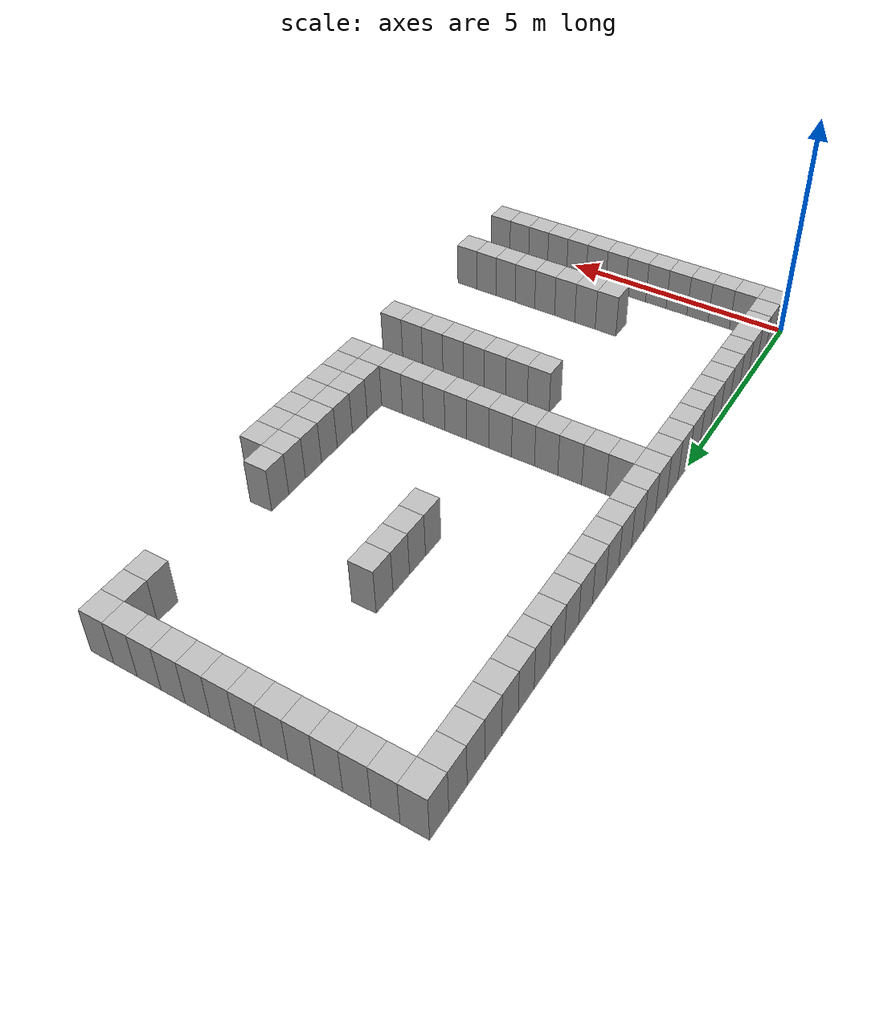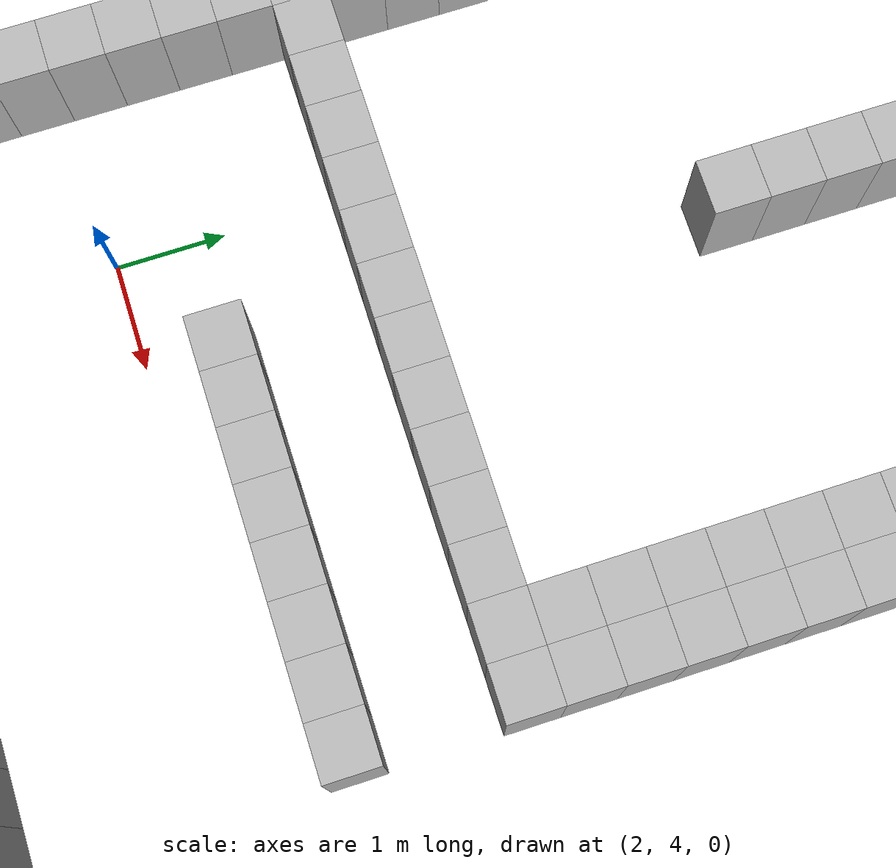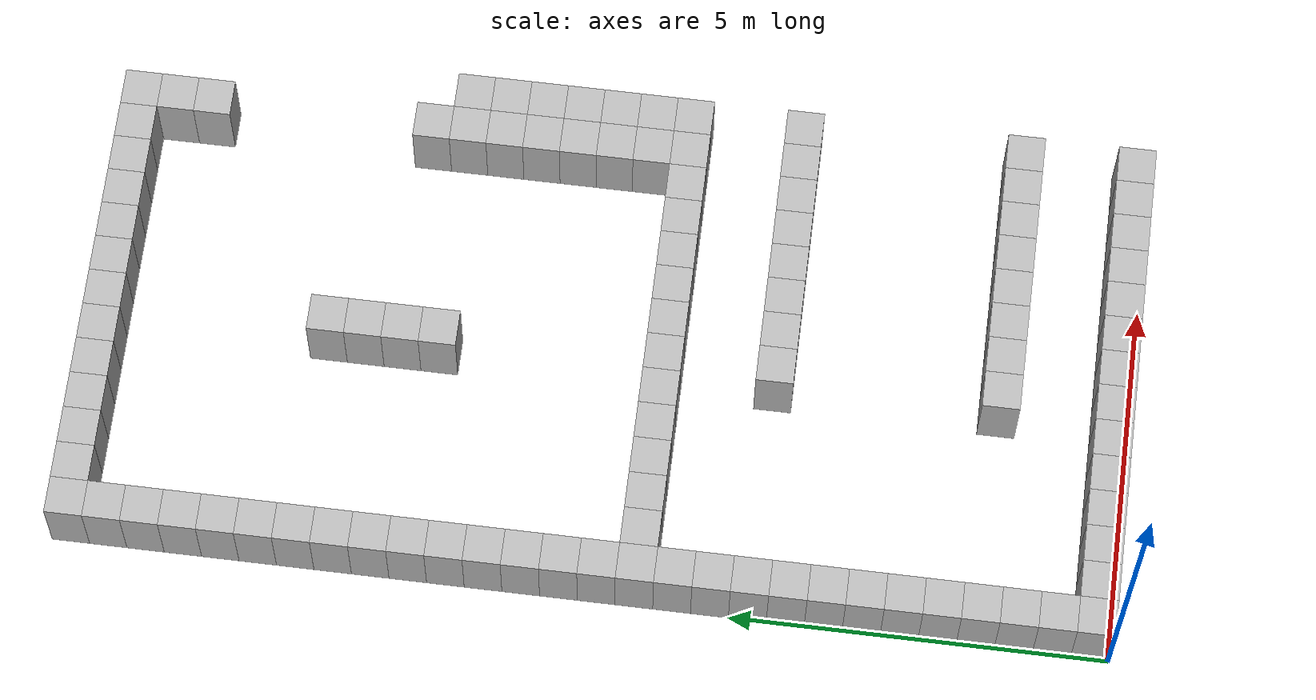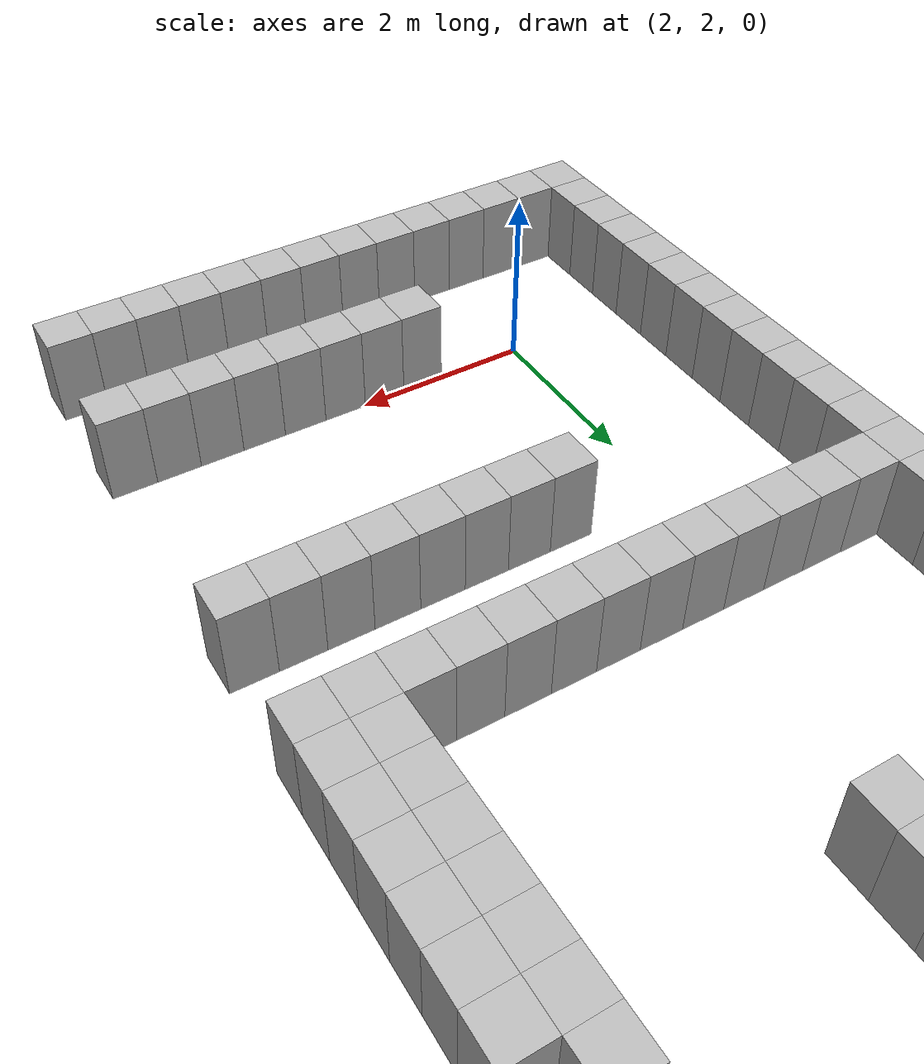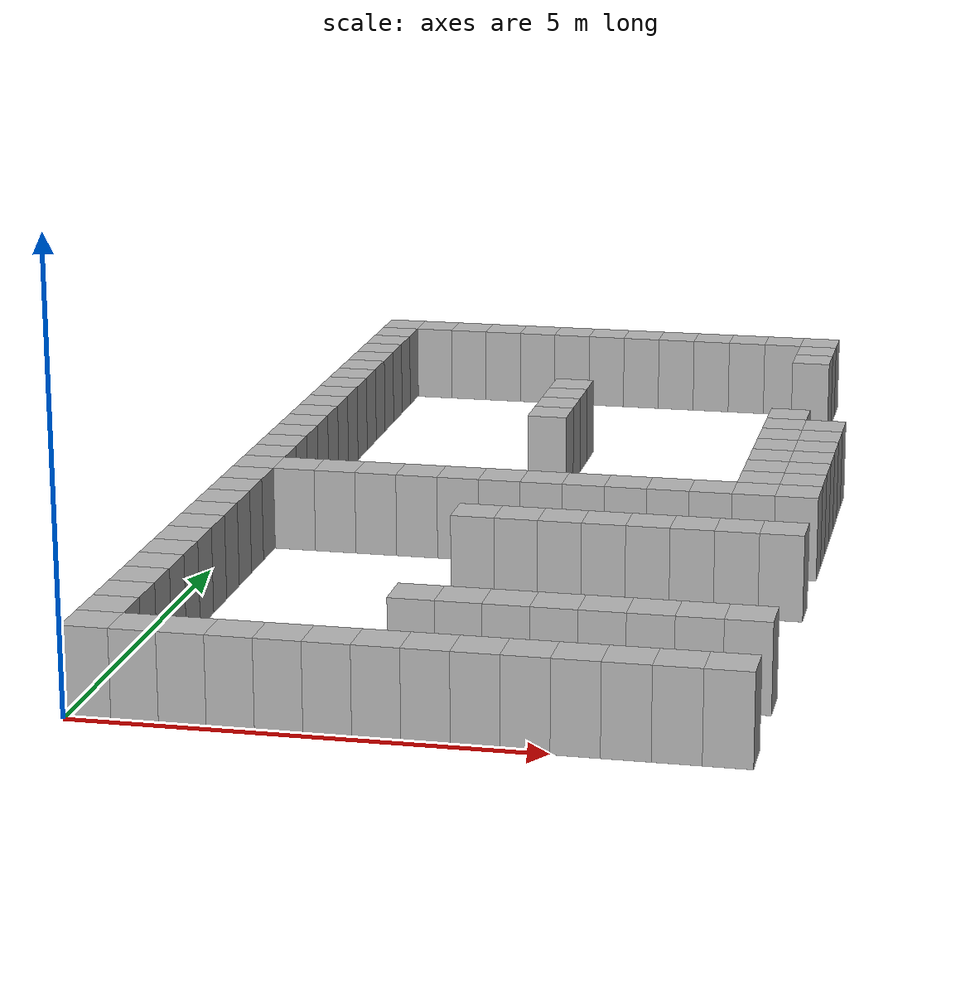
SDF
<sdf version="1.4">
 <world name="default">
  <model name="box_0_0">
   <pose>0.25 0.25 0.5 0 0 0</pose>
   <static>true</static>
   <link name="link">
    <collision name="collision"><geometry><box><size>0.5 0.5 1.0</size></box></geometry></collision>
    <visual name="visual"><geometry><box><size>0.5 0.5 1.0</size></box></geometry></visual>
   </link>
  </model>
  <model name="box_0_1">
   <pose>0.25 0.75 0.5 0 0 0</pose>
   <static>true</static>
   <link name="link">
    <collision name="collision"><geometry><box><size>0.5 0.5 1.0</size></box></geometry></collision>
    <visual name="visual"><geometry><box><size>0.5 0.5 1.0</size></box></geometry></visual>
   </link>
  </model>
  <model name="box_0_2">
   <pose>0.25 1.25 0.5 0 0 0</pose>
   <static>true</static>
   <link name="link">
    <collision name="collision"><geometry><box><size>0.5 0.5 1.0</size></box></geometry></collision>
    <visual name="visual"><geometry><box><size>0.5 0.5 1.0</size></box></geometry></visual>
   </link>
  </model>
  <model name="box_0_3">
   <pose>0.25 1.75 0.5 0 0 0</pose>
   <static>true</static>
   <link name="link">
    <collision name="collision"><geometry><box><size>0.5 0.5 1.0</size></box></geometry></collision>
    <visual name="visual"><geometry><box><size>0.5 0.5 1.0</size></box></geometry></visual>
   </link>
  </model>
  <model name="box_0_4">
   <pose>0.25 2.25 0.5 0 0 0</pose>
   <static>true</static>
   <link name="link">
    <collision name="collision"><geometry><box><size>0.5 0.5 1.0</size></box></geometry></collision>
    <visual name="visual"><geometry><box><size>0.5 0.5 1.0</size></box></geometry></visual>
   </link>
  </model>
  <model name="box_0_5">
   <pose>0.25 2.75 0.5 0 0 0</pose>
   <static>true</static>
   <link name="link">
    <collision name="collision"><geometry><box><size>0.5 0.5 1.0</size></box></geometry></collision>
    <visual name="visual"><geometry><box><size>0.5 0.5 1.0</size></box></geometry></visual>
   </link>
  </model>
  <model name="box_0_6">
   <pose>0.25 3.25 0.5 0 0 0</pose>
   <static>true</static>
   <link name="link">
    <collision name="collision"><geometry><box><size>0.5 0.5 1.0</size></box></geometry></collision>
    <visual name="visual"><geometry><box><size>0.5 0.5 1.0</size></box></geometry></visual>
   </link>
  </model>
  <model name="box_0_7">
   <pose>0.25 3.75 0.5 0 0 0</pose>
   <static>true</static>
   <link name="link">
    <collision name="collision"><geometry><box><size>0.5 0.5 1.0</size></box></geometry></collision>
    <visual name="visual"><geometry><box><size>0.5 0.5 1.0</size></box></geometry></visual>
   </link>
  </model>
  <model name="box_0_8">
   <pose>0.25 4.25 0.5 0 0 0</pose>
   <static>true</static>
   <link name="link">
    <collision name="collision"><geometry><box><size>0.5 0.5 1.0</size></box></geometry></collision>
    <visual name="visual"><geometry><box><size>0.5 0.5 1.0</size></box></geometry></visual>
   </link>
  </model>
  <model name="box_0_9">
   <pose>0.25 4.75 0.5 0 0 0</pose>
   <static>true</static>
   <link name="link">
    <collision name="collision"><geometry><box><size>0.5 0.5 1.0</size></box></geometry></collision>
    <visual name="visual"><geometry><box><size>0.5 0.5 1.0</size></box></geometry></visual>
   </link>
  </model>
  <model name="box_0_10">
   <pose>0.25 5.25 0.5 0 0 0</pose>
   <static>true</static>
   <link name="link">
    <collision name="collision"><geometry><box><size>0.5 0.5 1.0</size></box></geometry></collision>
    <visual name="visual"><geometry><box><size>0.5 0.5 1.0</size></box></geometry></visual>
   </link>
  </model>
  <model name="box_0_11">
   <pose>0.25 5.75 0.5 0 0 0</pose>
   <static>true</static>
   <link name="link">
    <collision name="collision"><geometry><box><size>0.5 0.5 1.0</size></box></geometry></collision>
    <visual name="visual"><geometry><box><size>0.5 0.5 1.0</size></box></geometry></visual>
   </link>
  </model>
  <model name="box_0_12">
   <pose>0.25 6.25 0.5 0 0 0</pose>
   <static>true</static>
   <link name="link">
    <collision name="collision"><geometry><box><size>0.5 0.5 1.0</size></box></geometry></collision>
    <visual name="visual"><geometry><box><size>0.5 0.5 1.0</size></box></geometry></visual>
   </link>
  </model>
  <model name="box_0_13">
   <pose>0.25 6.75 0.5 0 0 0</pose>
   <static>true</static>
   <link name="link">
    <collision name="collision"><geometry><box><size>0.5 0.5 1.0</size></box></geometry></collision>
    <visual name="visual"><geometry><box><size>0.5 0.5 1.0</size></box></geometry></visual>
   </link>
  </model>
  <model name="box_0_14">
   <pose>0.25 7.25 0.5 0 0 0</pose>
   <static>true</static>
   <link name="link">
    <collision name="collision"><geometry><box><size>0.5 0.5 1.0</size></box></geometry></collision>
    <visual name="visual"><geometry><box><size>0.5 0.5 1.0</size></box></geometry></visual>
   </link>
  </model>
  <model name="box_0_15">
   <pose>0.25 7.75 0.5 0 0 0</pose>
   <static>true</static>
   <link name="link">
    <collision name="collision"><geometry><box><size>0.5 0.5 1.0</size></box></geometry></collision>
    <visual name="visual"><geometry><box><size>0.5 0.5 1.0</size></box></geometry></visual>
   </link>
  </model>
  <model name="box_0_16">
   <pose>0.25 8.25 0.5 0 0 0</pose>
   <static>true</static>
   <link name="link">
    <collision name="collision"><geometry><box><size>0.5 0.5 1.0</size></box></geometry></collision>
    <visual name="visual"><geometry><box><size>0.5 0.5 1.0</size></box></geometry></visual>
   </link>
  </model>
  <model name="box_0_17">
   <pose>0.25 8.75 0.5 0 0 0</pose>
   <static>true</static>
   <link name="link">
    <collision name="collision"><geometry><box><size>0.5 0.5 1.0</size></box></geometry></collision>
    <visual name="visual"><geometry><box><size>0.5 0.5 1.0</size></box></geometry></visual>
   </link>
  </model>
  <model name="box_0_18">
   <pose>0.25 9.25 0.5 0 0 0</pose>
   <static>true</static>
   <link name="link">
    <collision name="collision"><geometry><box><size>0.5 0.5 1.0</size></box></geometry></collision>
    <visual name="visual"><geometry><box><size>0.5 0.5 1.0</size></box></geometry></visual>
   </link>
  </model>
  <model name="box_0_19">
   <pose>0.25 9.75 0.5 0 0 0</pose>
   <static>true</static>
   <link name="link">
    <collision name="collision"><geometry><box><size>0.5 0.5 1.0</size></box></geometry></collision>
    <visual name="visual"><geometry><box><size>0.5 0.5 1.0</size></box></geometry></visual>
   </link>
  </model>
  <model name="box_0_20">
   <pose>0.25 10.25 0.5 0 0 0</pose>
   <static>true</static>
   <link name="link">
    <collision name="collision"><geometry><box><size>0.5 0.5 1.0</size></box></geometry></collision>
    <visual name="visual"><geometry><box><size>0.5 0.5 1.0</size></box></geometry></visual>
   </link>
  </model>
  <model name="box_0_21">
   <pose>0.25 10.75 0.5 0 0 0</pose>
   <static>true</static>
   <link name="link">
    <collision name="collision"><geometry><box><size>0.5 0.5 1.0</size></box></geometry></collision>
    <visual name="visual"><geometry><box><size>0.5 0.5 1.0</size></box></geometry></visual>
   </link>
  </model>
  <model name="box_0_22">
   <pose>0.25 11.25 0.5 0 0 0</pose>
   <static>true</static>
   <link name="link">
    <collision name="collision"><geometry><box><size>0.5 0.5 1.0</size></box></geometry></collision>
    <visual name="visual"><geometry><box><size>0.5 0.5 1.0</size></box></geometry></visual>
   </link>
  </model>
  <model name="box_0_23">
   <pose>0.25 11.75 0.5 0 0 0</pose>
   <static>true</static>
   <link name="link">
    <collision name="collision"><geometry><box><size>0.5 0.5 1.0</size></box></geometry></collision>
    <visual name="visual"><geometry><box><size>0.5 0.5 1.0</size></box></geometry></visual>
   </link>
  </model>
  <model name="box_0_24">
   <pose>0.25 12.25 0.5 0 0 0</pose>
   <static>true</static>
   <link name="link">
    <collision name="collision"><geometry><box><size>0.5 0.5 1.0</size></box></geometry></collision>
    <visual name="visual"><geometry><box><size>0.5 0.5 1.0</size></box></geometry></visual>
   </link>
  </model>
  <model name="box_0_25">
   <pose>0.25 12.75 0.5 0 0 0</pose>
   <static>true</static>
   <link name="link">
    <collision name="collision"><geometry><box><size>0.5 0.5 1.0</size></box></geometry></collision>
    <visual name="visual"><geometry><box><size>0.5 0.5 1.0</size></box></geometry></visual>
   </link>
  </model>
  <model name="box_0_26">
   <pose>0.25 13.25 0.5 0 0 0</pose>
   <static>true</static>
   <link name="link">
    <collision name="collision"><geometry><box><size>0.5 0.5 1.0</size></box></geometry></collision>
    <visual name="visual"><geometry><box><size>0.5 0.5 1.0</size></box></geometry></visual>
   </link>
  </model>
  <model name="box_0_27">
   <pose>0.25 13.75 0.5 0 0 0</pose>
   <static>true</static>
   <link name="link">
    <collision name="collision"><geometry><box><size>0.5 0.5 1.0</size></box></geometry></collision>
    <visual name="visual"><geometry><box><size>0.5 0.5 1.0</size></box></geometry></visual>
   </link>
  </model>
  <model name="box_1_0">
   <pose>0.75 0.25 0.5 0 0 0</pose>
   <static>true</static>
   <link name="link">
    <collision name="collision"><geometry><box><size>0.5 0.5 1.0</size></box></geometry></collision>
    <visual name="visual"><geometry><box><size>0.5 0.5 1.0</size></box></geometry></visual>
   </link>
  </model>
  <model name="box_1_12">
   <pose>0.75 6.25 0.5 0 0 0</pose>
   <static>true</static>
   <link name="link">
    <collision name="collision"><geometry><box><size>0.5 0.5 1.0</size></box></geometry></collision>
    <visual name="visual"><geometry><box><size>0.5 0.5 1.0</size></box></geometry></visual>
   </link>
  </model>
  <model name="box_1_27">
   <pose>0.75 13.75 0.5 0 0 0</pose>
   <static>true</static>
   <link name="link">
    <collision name="collision"><geometry><box><size>0.5 0.5 1.0</size></box></geometry></collision>
    <visual name="visual"><geometry><box><size>0.5 0.5 1.0</size></box></geometry></visual>
   </link>
  </model>
  <model name="box_2_0">
   <pose>1.25 0.25 0.5 0 0 0</pose>
   <static>true</static>
   <link name="link">
    <collision name="collision"><geometry><box><size>0.5 0.5 1.0</size></box></geometry></collision>
    <visual name="visual"><geometry><box><size>0.5 0.5 1.0</size></box></geometry></visual>
   </link>
  </model>
  <model name="box_2_12">
   <pose>1.25 6.25 0.5 0 0 0</pose>
   <static>true</static>
   <link name="link">
    <collision name="collision"><geometry><box><size>0.5 0.5 1.0</size></box></geometry></collision>
    <visual name="visual"><geometry><box><size>0.5 0.5 1.0</size></box></geometry></visual>
   </link>
  </model>
  <model name="box_2_27">
   <pose>1.25 13.75 0.5 0 0 0</pose>
   <static>true</static>
   <link name="link">
    <collision name="collision"><geometry><box><size>0.5 0.5 1.0</size></box></geometry></collision>
    <visual name="visual"><geometry><box><size>0.5 0.5 1.0</size></box></geometry></visual>
   </link>
  </model>
  <model name="box_3_0">
   <pose>1.75 0.25 0.5 0 0 0</pose>
   <static>true</static>
   <link name="link">
    <collision name="collision"><geometry><box><size>0.5 0.5 1.0</size></box></geometry></collision>
    <visual name="visual"><geometry><box><size>0.5 0.5 1.0</size></box></geometry></visual>
   </link>
  </model>
  <model name="box_3_12">
   <pose>1.75 6.25 0.5 0 0 0</pose>
   <static>true</static>
   <link name="link">
    <collision name="collision"><geometry><box><size>0.5 0.5 1.0</size></box></geometry></collision>
    <visual name="visual"><geometry><box><size>0.5 0.5 1.0</size></box></geometry></visual>
   </link>
  </model>
  <model name="box_3_27">
   <pose>1.75 13.75 0.5 0 0 0</pose>
   <static>true</static>
   <link name="link">
    <collision name="collision"><geometry><box><size>0.5 0.5 1.0</size></box></geometry></collision>
    <visual name="visual"><geometry><box><size>0.5 0.5 1.0</size></box></geometry></visual>
   </link>
  </model>
  <model name="box_4_0">
   <pose>2.25 0.25 0.5 0 0 0</pose>
   <static>true</static>
   <link name="link">
    <collision name="collision"><geometry><box><size>0.5 0.5 1.0</size></box></geometry></collision>
    <visual name="visual"><geometry><box><size>0.5 0.5 1.0</size></box></geometry></visual>
   </link>
  </model>
  <model name="box_4_12">
   <pose>2.25 6.25 0.5 0 0 0</pose>
   <static>true</static>
   <link name="link">
    <collision name="collision"><geometry><box><size>0.5 0.5 1.0</size></box></geometry></collision>
    <visual name="visual"><geometry><box><size>0.5 0.5 1.0</size></box></geometry></visual>
   </link>
  </model>
  <model name="box_4_27">
   <pose>2.25 13.75 0.5 0 0 0</pose>
   <static>true</static>
   <link name="link">
    <collision name="collision"><geometry><box><size>0.5 0.5 1.0</size></box></geometry></collision>
    <visual name="visual"><geometry><box><size>0.5 0.5 1.0</size></box></geometry></visual>
   </link>
  </model>
  <model name="box_5_0">
   <pose>2.75 0.25 0.5 0 0 0</pose>
   <static>true</static>
   <link name="link">
    <collision name="collision"><geometry><box><size>0.5 0.5 1.0</size></box></geometry></collision>
    <visual name="visual"><geometry><box><size>0.5 0.5 1.0</size></box></geometry></visual>
   </link>
  </model>
  <model name="box_5_12">
   <pose>2.75 6.25 0.5 0 0 0</pose>
   <static>true</static>
   <link name="link">
    <collision name="collision"><geometry><box><size>0.5 0.5 1.0</size></box></geometry></collision>
    <visual name="visual"><geometry><box><size>0.5 0.5 1.0</size></box></geometry></visual>
   </link>
  </model>
  <model name="box_5_27">
   <pose>2.75 13.75 0.5 0 0 0</pose>
   <static>true</static>
   <link name="link">
    <collision name="collision"><geometry><box><size>0.5 0.5 1.0</size></box></geometry></collision>
    <visual name="visual"><geometry><box><size>0.5 0.5 1.0</size></box></geometry></visual>
   </link>
  </model>
  <model name="box_6_0">
   <pose>3.25 0.25 0.5 0 0 0</pose>
   <static>true</static>
   <link name="link">
    <collision name="collision"><geometry><box><size>0.5 0.5 1.0</size></box></geometry></collision>
    <visual name="visual"><geometry><box><size>0.5 0.5 1.0</size></box></geometry></visual>
   </link>
  </model>
  <model name="box_6_3">
   <pose>3.25 1.75 0.5 0 0 0</pose>
   <static>true</static>
   <link name="link">
    <collision name="collision"><geometry><box><size>0.5 0.5 1.0</size></box></geometry></collision>
    <visual name="visual"><geometry><box><size>0.5 0.5 1.0</size></box></geometry></visual>
   </link>
  </model>
  <model name="box_6_9">
   <pose>3.25 4.75 0.5 0 0 0</pose>
   <static>true</static>
   <link name="link">
    <collision name="collision"><geometry><box><size>0.5 0.5 1.0</size></box></geometry></collision>
    <visual name="visual"><geometry><box><size>0.5 0.5 1.0</size></box></geometry></visual>
   </link>
  </model>
  <model name="box_6_12">
   <pose>3.25 6.25 0.5 0 0 0</pose>
   <static>true</static>
   <link name="link">
    <collision name="collision"><geometry><box><size>0.5 0.5 1.0</size></box></geometry></collision>
    <visual name="visual"><geometry><box><size>0.5 0.5 1.0</size></box></geometry></visual>
   </link>
  </model>
  <model name="box_6_18">
   <pose>3.25 9.25 0.5 0 0 0</pose>
   <static>true</static>
   <link name="link">
    <collision name="collision"><geometry><box><size>0.5 0.5 1.0</size></box></geometry></collision>
    <visual name="visual"><geometry><box><size>0.5 0.5 1.0</size></box></geometry></visual>
   </link>
  </model>
  <model name="box_6_19">
   <pose>3.25 9.75 0.5 0 0 0</pose>
   <static>true</static>
   <link name="link">
    <collision name="collision"><geometry><box><size>0.5 0.5 1.0</size></box></geometry></collision>
    <visual name="visual"><geometry><box><size>0.5 0.5 1.0</size></box></geometry></visual>
   </link>
  </model>
  <model name="box_6_20">
   <pose>3.25 10.25 0.5 0 0 0</pose>
   <static>true</static>
   <link name="link">
    <collision name="collision"><geometry><box><size>0.5 0.5 1.0</size></box></geometry></collision>
    <visual name="visual"><geometry><box><size>0.5 0.5 1.0</size></box></geometry></visual>
   </link>
  </model>
  <model name="box_6_21">
   <pose>3.25 10.75 0.5 0 0 0</pose>
   <static>true</static>
   <link name="link">
    <collision name="collision"><geometry><box><size>0.5 0.5 1.0</size></box></geometry></collision>
    <visual name="visual"><geometry><box><size>0.5 0.5 1.0</size></box></geometry></visual>
   </link>
  </model>
  <model name="box_6_27">
   <pose>3.25 13.75 0.5 0 0 0</pose>
   <static>true</static>
   <link name="link">
    <collision name="collision"><geometry><box><size>0.5 0.5 1.0</size></box></geometry></collision>
    <visual name="visual"><geometry><box><size>0.5 0.5 1.0</size></box></geometry></visual>
   </link>
  </model>
  <model name="box_7_0">
   <pose>3.75 0.25 0.5 0 0 0</pose>
   <static>true</static>
   <link name="link">
    <collision name="collision"><geometry><box><size>0.5 0.5 1.0</size></box></geometry></collision>
    <visual name="visual"><geometry><box><size>0.5 0.5 1.0</size></box></geometry></visual>
   </link>
  </model>
  <model name="box_7_3">
   <pose>3.75 1.75 0.5 0 0 0</pose>
   <static>true</static>
   <link name="link">
    <collision name="collision"><geometry><box><size>0.5 0.5 1.0</size></box></geometry></collision>
    <visual name="visual"><geometry><box><size>0.5 0.5 1.0</size></box></geometry></visual>
   </link>
  </model>
  <model name="box_7_9">
   <pose>3.75 4.75 0.5 0 0 0</pose>
   <static>true</static>
   <link name="link">
    <collision name="collision"><geometry><box><size>0.5 0.5 1.0</size></box></geometry></collision>
    <visual name="visual"><geometry><box><size>0.5 0.5 1.0</size></box></geometry></visual>
   </link>
  </model>
  <model name="box_7_12">
   <pose>3.75 6.25 0.5 0 0 0</pose>
   <static>true</static>
   <link name="link">
    <collision name="collision"><geometry><box><size>0.5 0.5 1.0</size></box></geometry></collision>
    <visual name="visual"><geometry><box><size>0.5 0.5 1.0</size></box></geometry></visual>
   </link>
  </model>
  <model name="box_7_27">
   <pose>3.75 13.75 0.5 0 0 0</pose>
   <static>true</static>
   <link name="link">
    <collision name="collision"><geometry><box><size>0.5 0.5 1.0</size></box></geometry></collision>
    <visual name="visual"><geometry><box><size>0.5 0.5 1.0</size></box></geometry></visual>
   </link>
  </model>
  <model name="box_8_0">
   <pose>4.25 0.25 0.5 0 0 0</pose>
   <static>true</static>
   <link name="link">
    <collision name="collision"><geometry><box><size>0.5 0.5 1.0</size></box></geometry></collision>
    <visual name="visual"><geometry><box><size>0.5 0.5 1.0</size></box></geometry></visual>
   </link>
  </model>
  <model name="box_8_3">
   <pose>4.25 1.75 0.5 0 0 0</pose>
   <static>true</static>
   <link name="link">
    <collision name="collision"><geometry><box><size>0.5 0.5 1.0</size></box></geometry></collision>
    <visual name="visual"><geometry><box><size>0.5 0.5 1.0</size></box></geometry></visual>
   </link>
  </model>
  <model name="box_8_9">
   <pose>4.25 4.75 0.5 0 0 0</pose>
   <static>true</static>
   <link name="link">
    <collision name="collision"><geometry><box><size>0.5 0.5 1.0</size></box></geometry></collision>
    <visual name="visual"><geometry><box><size>0.5 0.5 1.0</size></box></geometry></visual>
   </link>
  </model>
  <model name="box_8_12">
   <pose>4.25 6.25 0.5 0 0 0</pose>
   <static>true</static>
   <link name="link">
    <collision name="collision"><geometry><box><size>0.5 0.5 1.0</size></box></geometry></collision>
    <visual name="visual"><geometry><box><size>0.5 0.5 1.0</size></box></geometry></visual>
   </link>
  </model>
  <model name="box_8_27">
   <pose>4.25 13.75 0.5 0 0 0</pose>
   <static>true</static>
   <link name="link">
    <collision name="collision"><geometry><box><size>0.5 0.5 1.0</size></box></geometry></collision>
    <visual name="visual"><geometry><box><size>0.5 0.5 1.0</size></box></geometry></visual>
   </link>
  </model>
  <model name="box_9_0">
   <pose>4.75 0.25 0.5 0 0 0</pose>
   <static>true</static>
   <link name="link">
    <collision name="collision"><geometry><box><size>0.5 0.5 1.0</size></box></geometry></collision>
    <visual name="visual"><geometry><box><size>0.5 0.5 1.0</size></box></geometry></visual>
   </link>
  </model>
  <model name="box_9_3">
   <pose>4.75 1.75 0.5 0 0 0</pose>
   <static>true</static>
   <link name="link">
    <collision name="collision"><geometry><box><size>0.5 0.5 1.0</size></box></geometry></collision>
    <visual name="visual"><geometry><box><size>0.5 0.5 1.0</size></box></geometry></visual>
   </link>
  </model>
  <model name="box_9_9">
   <pose>4.75 4.75 0.5 0 0 0</pose>
   <static>true</static>
   <link name="link">
    <collision name="collision"><geometry><box><size>0.5 0.5 1.0</size></box></geometry></collision>
    <visual name="visual"><geometry><box><size>0.5 0.5 1.0</size></box></geometry></visual>
   </link>
  </model>
  <model name="box_9_12">
   <pose>4.75 6.25 0.5 0 0 0</pose>
   <static>true</static>
   <link name="link">
    <collision name="collision"><geometry><box><size>0.5 0.5 1.0</size></box></geometry></collision>
    <visual name="visual"><geometry><box><size>0.5 0.5 1.0</size></box></geometry></visual>
   </link>
  </model>
  <model name="box_9_27">
   <pose>4.75 13.75 0.5 0 0 0</pose>
   <static>true</static>
   <link name="link">
    <collision name="collision"><geometry><box><size>0.5 0.5 1.0</size></box></geometry></collision>
    <visual name="visual"><geometry><box><size>0.5 0.5 1.0</size></box></geometry></visual>
   </link>
  </model>
  <model name="box_10_0">
   <pose>5.25 0.25 0.5 0 0 0</pose>
   <static>true</static>
   <link name="link">
    <collision name="collision"><geometry><box><size>0.5 0.5 1.0</size></box></geometry></collision>
    <visual name="visual"><geometry><box><size>0.5 0.5 1.0</size></box></geometry></visual>
   </link>
  </model>
  <model name="box_10_3">
   <pose>5.25 1.75 0.5 0 0 0</pose>
   <static>true</static>
   <link name="link">
    <collision name="collision"><geometry><box><size>0.5 0.5 1.0</size></box></geometry></collision>
    <visual name="visual"><geometry><box><size>0.5 0.5 1.0</size></box></geometry></visual>
   </link>
  </model>
  <model name="box_10_9">
   <pose>5.25 4.75 0.5 0 0 0</pose>
   <static>true</static>
   <link name="link">
    <collision name="collision"><geometry><box><size>0.5 0.5 1.0</size></box></geometry></collision>
    <visual name="visual"><geometry><box><size>0.5 0.5 1.0</size></box></geometry></visual>
   </link>
  </model>
  <model name="box_10_12">
   <pose>5.25 6.25 0.5 0 0 0</pose>
   <static>true</static>
   <link name="link">
    <collision name="collision"><geometry><box><size>0.5 0.5 1.0</size></box></geometry></collision>
    <visual name="visual"><geometry><box><size>0.5 0.5 1.0</size></box></geometry></visual>
   </link>
  </model>
  <model name="box_10_27">
   <pose>5.25 13.75 0.5 0 0 0</pose>
   <static>true</static>
   <link name="link">
    <collision name="collision"><geometry><box><size>0.5 0.5 1.0</size></box></geometry></collision>
    <visual name="visual"><geometry><box><size>0.5 0.5 1.0</size></box></geometry></visual>
   </link>
  </model>
  <model name="box_11_0">
   <pose>5.75 0.25 0.5 0 0 0</pose>
   <static>true</static>
   <link name="link">
    <collision name="collision"><geometry><box><size>0.5 0.5 1.0</size></box></geometry></collision>
    <visual name="visual"><geometry><box><size>0.5 0.5 1.0</size></box></geometry></visual>
   </link>
  </model>
  <model name="box_11_3">
   <pose>5.75 1.75 0.5 0 0 0</pose>
   <static>true</static>
   <link name="link">
    <collision name="collision"><geometry><box><size>0.5 0.5 1.0</size></box></geometry></collision>
    <visual name="visual"><geometry><box><size>0.5 0.5 1.0</size></box></geometry></visual>
   </link>
  </model>
  <model name="box_11_9">
   <pose>5.75 4.75 0.5 0 0 0</pose>
   <static>true</static>
   <link name="link">
    <collision name="collision"><geometry><box><size>0.5 0.5 1.0</size></box></geometry></collision>
    <visual name="visual"><geometry><box><size>0.5 0.5 1.0</size></box></geometry></visual>
   </link>
  </model>
  <model name="box_11_12">
   <pose>5.75 6.25 0.5 0 0 0</pose>
   <static>true</static>
   <link name="link">
    <collision name="collision"><geometry><box><size>0.5 0.5 1.0</size></box></geometry></collision>
    <visual name="visual"><geometry><box><size>0.5 0.5 1.0</size></box></geometry></visual>
   </link>
  </model>
  <model name="box_11_27">
   <pose>5.75 13.75 0.5 0 0 0</pose>
   <static>true</static>
   <link name="link">
    <collision name="collision"><geometry><box><size>0.5 0.5 1.0</size></box></geometry></collision>
    <visual name="visual"><geometry><box><size>0.5 0.5 1.0</size></box></geometry></visual>
   </link>
  </model>
  <model name="box_12_0">
   <pose>6.25 0.25 0.5 0 0 0</pose>
   <static>true</static>
   <link name="link">
    <collision name="collision"><geometry><box><size>0.5 0.5 1.0</size></box></geometry></collision>
    <visual name="visual"><geometry><box><size>0.5 0.5 1.0</size></box></geometry></visual>
   </link>
  </model>
  <model name="box_12_3">
   <pose>6.25 1.75 0.5 0 0 0</pose>
   <static>true</static>
   <link name="link">
    <collision name="collision"><geometry><box><size>0.5 0.5 1.0</size></box></geometry></collision>
    <visual name="visual"><geometry><box><size>0.5 0.5 1.0</size></box></geometry></visual>
   </link>
  </model>
  <model name="box_12_9">
   <pose>6.25 4.75 0.5 0 0 0</pose>
   <static>true</static>
   <link name="link">
    <collision name="collision"><geometry><box><size>0.5 0.5 1.0</size></box></geometry></collision>
    <visual name="visual"><geometry><box><size>0.5 0.5 1.0</size></box></geometry></visual>
   </link>
  </model>
  <model name="box_12_12">
   <pose>6.25 6.25 0.5 0 0 0</pose>
   <static>true</static>
   <link name="link">
    <collision name="collision"><geometry><box><size>0.5 0.5 1.0</size></box></geometry></collision>
    <visual name="visual"><geometry><box><size>0.5 0.5 1.0</size></box></geometry></visual>
   </link>
  </model>
  <model name="box_12_13">
   <pose>6.25 6.75 0.5 0 0 0</pose>
   <static>true</static>
   <link name="link">
    <collision name="collision"><geometry><box><size>0.5 0.5 1.0</size></box></geometry></collision>
    <visual name="visual"><geometry><box><size>0.5 0.5 1.0</size></box></geometry></visual>
   </link>
  </model>
  <model name="box_12_14">
   <pose>6.25 7.25 0.5 0 0 0</pose>
   <static>true</static>
   <link name="link">
    <collision name="collision"><geometry><box><size>0.5 0.5 1.0</size></box></geometry></collision>
    <visual name="visual"><geometry><box><size>0.5 0.5 1.0</size></box></geometry></visual>
   </link>
  </model>
  <model name="box_12_15">
   <pose>6.25 7.75 0.5 0 0 0</pose>
   <static>true</static>
   <link name="link">
    <collision name="collision"><geometry><box><size>0.5 0.5 1.0</size></box></geometry></collision>
    <visual name="visual"><geometry><box><size>0.5 0.5 1.0</size></box></geometry></visual>
   </link>
  </model>
  <model name="box_12_16">
   <pose>6.25 8.25 0.5 0 0 0</pose>
   <static>true</static>
   <link name="link">
    <collision name="collision"><geometry><box><size>0.5 0.5 1.0</size></box></geometry></collision>
    <visual name="visual"><geometry><box><size>0.5 0.5 1.0</size></box></geometry></visual>
   </link>
  </model>
  <model name="box_12_17">
   <pose>6.25 8.75 0.5 0 0 0</pose>
   <static>true</static>
   <link name="link">
    <collision name="collision"><geometry><box><size>0.5 0.5 1.0</size></box></geometry></collision>
    <visual name="visual"><geometry><box><size>0.5 0.5 1.0</size></box></geometry></visual>
   </link>
  </model>
  <model name="box_12_18">
   <pose>6.25 9.25 0.5 0 0 0</pose>
   <static>true</static>
   <link name="link">
    <collision name="collision"><geometry><box><size>0.5 0.5 1.0</size></box></geometry></collision>
    <visual name="visual"><geometry><box><size>0.5 0.5 1.0</size></box></geometry></visual>
   </link>
  </model>
  <model name="box_12_19">
   <pose>6.25 9.75 0.5 0 0 0</pose>
   <static>true</static>
   <link name="link">
    <collision name="collision"><geometry><box><size>0.5 0.5 1.0</size></box></geometry></collision>
    <visual name="visual"><geometry><box><size>0.5 0.5 1.0</size></box></geometry></visual>
   </link>
  </model>
  <model name="box_12_25">
   <pose>6.25 12.75 0.5 0 0 0</pose>
   <static>true</static>
   <link name="link">
    <collision name="collision"><geometry><box><size>0.5 0.5 1.0</size></box></geometry></collision>
    <visual name="visual"><geometry><box><size>0.5 0.5 1.0</size></box></geometry></visual>
   </link>
  </model>
  <model name="box_12_26">
   <pose>6.25 13.25 0.5 0 0 0</pose>
   <static>true</static>
   <link name="link">
    <collision name="collision"><geometry><box><size>0.5 0.5 1.0</size></box></geometry></collision>
    <visual name="visual"><geometry><box><size>0.5 0.5 1.0</size></box></geometry></visual>
   </link>
  </model>
  <model name="box_12_27">
   <pose>6.25 13.75 0.5 0 0 0</pose>
   <static>true</static>
   <link name="link">
    <collision name="collision"><geometry><box><size>0.5 0.5 1.0</size></box></geometry></collision>
    <visual name="visual"><geometry><box><size>0.5 0.5 1.0</size></box></geometry></visual>
   </link>
  </model>
  <model name="box_13_0">
   <pose>6.75 0.25 0.5 0 0 0</pose>
   <static>true</static>
   <link name="link">
    <collision name="collision"><geometry><box><size>0.5 0.5 1.0</size></box></geometry></collision>
    <visual name="visual"><geometry><box><size>0.5 0.5 1.0</size></box></geometry></visual>
   </link>
  </model>
  <model name="box_13_3">
   <pose>6.75 1.75 0.5 0 0 0</pose>
   <static>true</static>
   <link name="link">
    <collision name="collision"><geometry><box><size>0.5 0.5 1.0</size></box></geometry></collision>
    <visual name="visual"><geometry><box><size>0.5 0.5 1.0</size></box></geometry></visual>
   </link>
  </model>
  <model name="box_13_9">
   <pose>6.75 4.75 0.5 0 0 0</pose>
   <static>true</static>
   <link name="link">
    <collision name="collision"><geometry><box><size>0.5 0.5 1.0</size></box></geometry></collision>
    <visual name="visual"><geometry><box><size>0.5 0.5 1.0</size></box></geometry></visual>
   </link>
  </model>
  <model name="box_13_12">
   <pose>6.75 6.25 0.5 0 0 0</pose>
   <static>true</static>
   <link name="link">
    <collision name="collision"><geometry><box><size>0.5 0.5 1.0</size></box></geometry></collision>
    <visual name="visual"><geometry><box><size>0.5 0.5 1.0</size></box></geometry></visual>
   </link>
  </model>
  <model name="box_13_13">
   <pose>6.75 6.75 0.5 0 0 0</pose>
   <static>true</static>
   <link name="link">
    <collision name="collision"><geometry><box><size>0.5 0.5 1.0</size></box></geometry></collision>
    <visual name="visual"><geometry><box><size>0.5 0.5 1.0</size></box></geometry></visual>
   </link>
  </model>
  <model name="box_13_14">
   <pose>6.75 7.25 0.5 0 0 0</pose>
   <static>true</static>
   <link name="link">
    <collision name="collision"><geometry><box><size>0.5 0.5 1.0</size></box></geometry></collision>
    <visual name="visual"><geometry><box><size>0.5 0.5 1.0</size></box></geometry></visual>
   </link>
  </model>
  <model name="box_13_15">
   <pose>6.75 7.75 0.5 0 0 0</pose>
   <static>true</static>
   <link name="link">
    <collision name="collision"><geometry><box><size>0.5 0.5 1.0</size></box></geometry></collision>
    <visual name="visual"><geometry><box><size>0.5 0.5 1.0</size></box></geometry></visual>
   </link>
  </model>
  <model name="box_13_16">
   <pose>6.75 8.25 0.5 0 0 0</pose>
   <static>true</static>
   <link name="link">
    <collision name="collision"><geometry><box><size>0.5 0.5 1.0</size></box></geometry></collision>
    <visual name="visual"><geometry><box><size>0.5 0.5 1.0</size></box></geometry></visual>
   </link>
  </model>
  <model name="box_13_17">
   <pose>6.75 8.75 0.5 0 0 0</pose>
   <static>true</static>
   <link name="link">
    <collision name="collision"><geometry><box><size>0.5 0.5 1.0</size></box></geometry></collision>
    <visual name="visual"><geometry><box><size>0.5 0.5 1.0</size></box></geometry></visual>
   </link>
  </model>
  <model name="box_13_18">
   <pose>6.75 9.25 0.5 0 0 0</pose>
   <static>true</static>
   <link name="link">
    <collision name="collision"><geometry><box><size>0.5 0.5 1.0</size></box></geometry></collision>
    <visual name="visual"><geometry><box><size>0.5 0.5 1.0</size></box></geometry></visual>
   </link>
  </model>
 </world>
</sdf>
